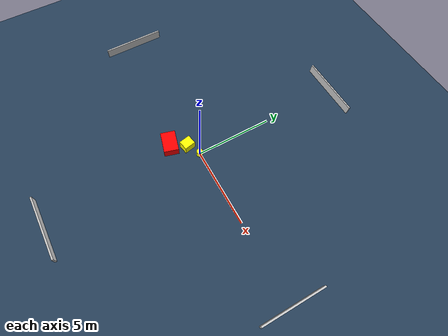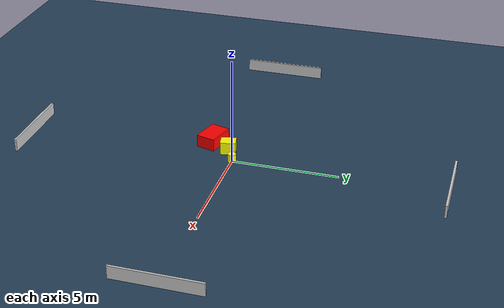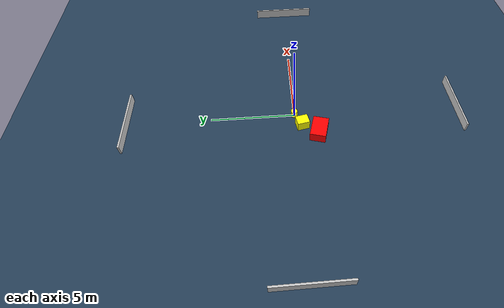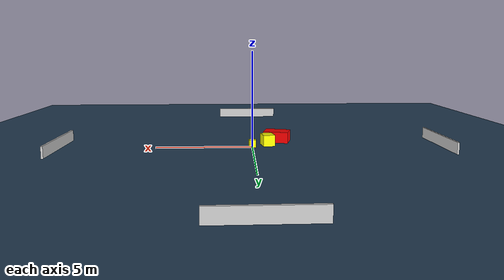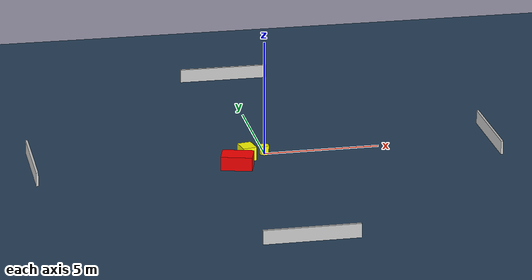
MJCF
<?xml version="1.0" ?>
<mujoco model="generated_environment">
  <option timestep="0.01" integrator="RK4" cone="elliptic"/>
  <default>
    <geom density="1"/>
  </default>
  <asset>
    <texture builtin="gradient" height="3072" name="skybox" rgb1="0.3 0.5 0.7" rgb2="0 0 0" type="skybox" width="512"/>
    <texture builtin="checker" height="300" name="groundplane" rgb1="0.2 0.3 0.4" rgb2="0.1 0.2 0.3" type="2d" width="300"/>
    <material name="groundplane" reflectance="0.2" texrepeat="5 5" texture="groundplane"/>
  </asset>
  <worldbody>
    <light dir="0 0 -1" directional="true" pos="0 0 1.5"/>
    <geom condim="3" friction="0.5 0.005 0.001" material="groundplane" name="floor" pos="0 0 0" size="0 0 0.05" type="plane"/>
    <body name="walls">
      <geom name="wall_1" condim="4" pos="-10.0 0.0 0.3" rgba="0.800000011920929 0.800000011920929 0.800000011920929 1.0" size="0.05 2.0 0.3" type="box"/>
      <geom name="wall_2" condim="4" pos="10.0 0.0 0.3" rgba="0.800000011920929 0.800000011920929 0.800000011920929 1.0" size="0.05 2.0 0.3" type="box"/>
      <geom name="wall_3" condim="4" pos="0.0 -10.0 0.3" rgba="0.800000011920929 0.800000011920929 0.800000011920929 1.0" size="2.0 0.05 0.3" type="box"/>
      <geom name="wall_4" condim="4" pos="0.0 10.0 0.3" rgba="0.800000011920929 0.800000011920929 0.800000011920929 1.0" size="2.0 0.05 0.3" type="box"/>
    </body>
    <body name="robot">
      <joint name="joint_x" type="slide" pos="0 0 0" axis="1 0 0"/>
      <joint name="joint_y" type="slide" pos="0 0 0" axis="0 1 0"/>
      <geom name="robot" type="cylinder" pos="0.0 0.0 0.2" size="0.2 0.2 0.0" mass="5.0" friction="1.0 0.005 0.0001" condim="4" rgba="1.0 1.0 0.0 1.0"/>
    </body>
    <body name="obstacle_1_movable">
      <geom name="obstacle_1_movable" condim="4" pos="-0.8293317538590882 -0.42484373895529925 0.3" euler="0 0 191.19177934288328" friction="0.0 0.005 0.001" rgba="1.0 1.0 0.0 1.0" size="0.3048675981131441 0.3631795337667605 0.3" type="box" mass="0.1"/>
      <joint type="free"/>
    </body>
    <body name="obstacle_2_static">
      <geom name="obstacle_2_static" condim="4" pos="-1.42056745678702 -1.3625923392398491 0.3" euler="0 0 164.3521294130359" friction="0.0 0.005 0.001" rgba="1.0 0.0 0.0 1.0" size="0.6718337317593059 0.4624572267900676 0.3" type="box"/>
    </body>
  </worldbody>
  <actuator>
    <motor name="actuator_x" joint="joint_x" gear="1" ctrlrange="-1 1"/>
    <motor name="actuator_y" joint="joint_y" gear="1" ctrlrange="-1 1"/>
  </actuator>
</mujoco>
